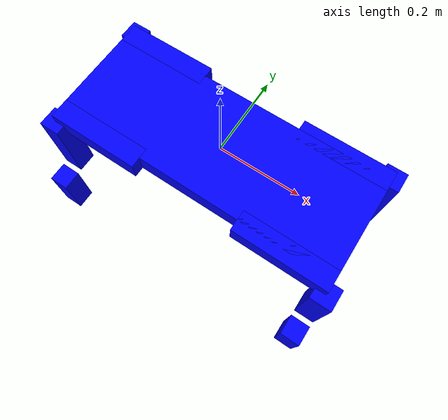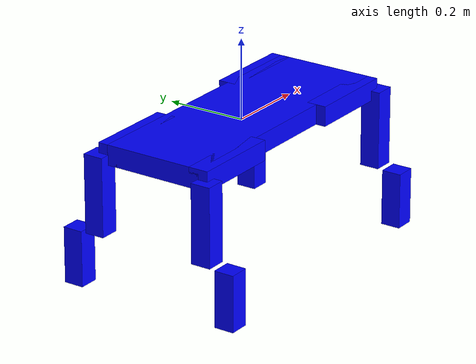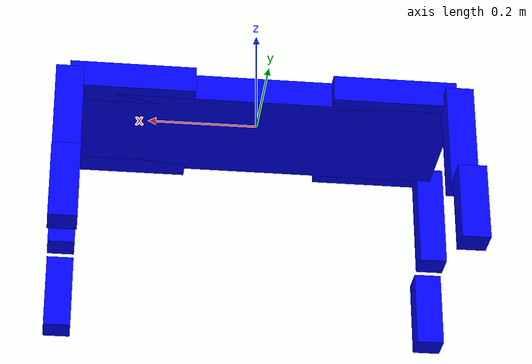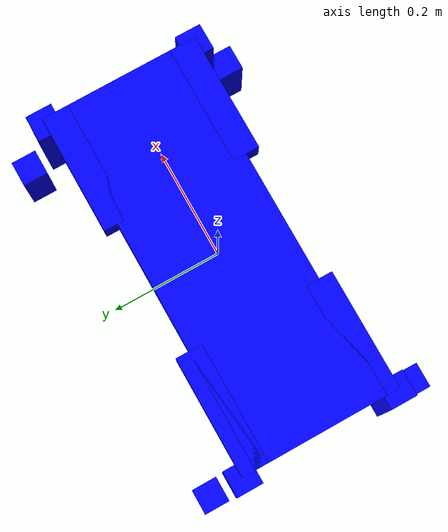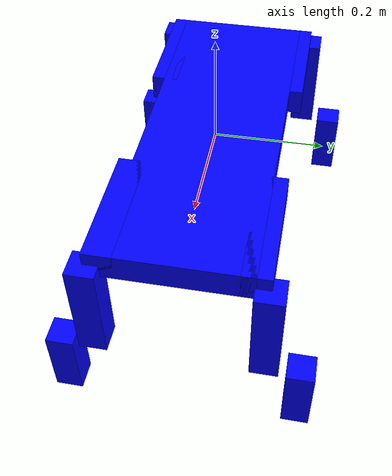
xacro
<?xml version="1.0"?>
<robot name="basic_quad" xmlns:xacro="http://www.ros.org/wiki/xacro">

<!-- Variable Definitions -->
<!-- TODO DR: Fix for new lengths! -->
<xacro:property name="thigh_length" value="0.22550"/>
<xacro:property name="thigh_offset" value="0.02300"/>

<xacro:property name="calf_length"  value="0.19625"/>
<xacro:property name="calf_offset"  value="0.06300"/>

<xacro:property name="foot_length"  value="0.14000"/>
<xacro:property name="foot_offset"  value="0.01600"/>

<xacro:property name="leg_fb"  value="0.35"/>
<xacro:property name="leg_lr"  value="0.125725"/>

<!-- Helper Macros -->
<xacro:macro name="box_link" params="name visual_origin visual_size">
    <link name="${name}">
        <visual>
            <origin xyz="${visual_origin}" rpy="0 0 0"/>
            <geometry>
                <box size="${visual_size}"/>
            </geometry>
            <material name="blue">
                <color rgba="0 0 1 1"/>
            </material>
        </visual>

        <collision>
            <origin xyz="${visual_origin}" rpy="0 0 0"/>
            <geometry>
                <box size="${visual_size}"/>
            </geometry>
        </collision>
    </link>
</xacro:macro>

<xacro:macro name="revolute_joint" params="name parent child origin axis">
    <joint name="${name}" type="revolute">
        <parent link="${parent}"/>
        <child  link="${child}"/>

        <origin xyz="${origin}" rpy="0 0 0"/>

        <axis xyz="${axis}"/>

        <limit lower="-3.14" upper="3.14" effort="1" velocity="1"/>

    </joint>
</xacro:macro>

<xacro:macro name="leg3dof" params="prefix parent hip_origin ysign xsign hip_roll_sign">

    <xacro:box_link
        name="${prefix}_thigh"
        visual_origin="${xsign * thigh_length/2} 0.0 0.0"
        visual_size="${thigh_length} 0.05 0.05"/>

    <xacro:box_link
        name="${prefix}_calf"
        visual_origin="0.0 0.0 ${-calf_length/2}"
        visual_size="0.05 0.05 ${calf_length}"/>

    <xacro:box_link
        name="${prefix}_foot"
        visual_origin="0.0 0.0 ${-foot_length/2}"
        visual_size="0.05 0.05 ${foot_length}"/>

    <xacro:revolute_joint
        name="${prefix}_hip_roll"
        parent="${parent}"
        child="${prefix}_thigh"
        origin="${hip_origin}"
        axis="${hip_roll_sign * 1} 0 0"/>

    <xacro:revolute_joint
        name="${prefix}_hip_pitch"
        parent="${prefix}_thigh"
        child="${prefix}_calf"
        origin="${xsign * thigh_length} ${ysign * thigh_offset} 0.0"
        axis="0 ${ysign * 1} 0"/>

    <xacro:revolute_joint
        name="${prefix}_knee_pitch"
        parent="${prefix}_calf"
        child="${prefix}_foot"
        origin="0.0 ${ysign * calf_offset} ${-calf_length}"
        axis="0 ${ysign * 1} 0"/>

</xacro:macro>

<!-- Actual URDF Definitions -->

<!-- Link/Joint Definitions -->
<xacro:box_link
    name="body"
    visual_origin= "0.0 0.0 0.0"
    visual_size="${leg_fb * 2} ${leg_lr * 2} 0.05"/>

<xacro:leg3dof
    prefix="fl"
    parent="body"
    hip_origin="${leg_fb - thigh_length} ${leg_lr} 0.0"
    ysign="1"
    xsign="1"
    hip_roll_sign="1"/>

<xacro:leg3dof
    prefix="fr"
    parent="body"
    hip_origin="${leg_fb - thigh_length} ${-leg_lr} 0.0"
    ysign="-1"
    xsign="1"
    hip_roll_sign="-1"/>

<xacro:leg3dof
    prefix="bl"
    parent="body"
    hip_origin="${-leg_fb + thigh_length} ${leg_lr} 0.0"
    ysign="1"
    xsign="-1"
    hip_roll_sign="1"/>

<xacro:leg3dof
    prefix="br"
    parent="body"
    hip_origin="${-leg_fb + thigh_length} ${-leg_lr} 0.0"
    ysign="-1"
    xsign="-1"
    hip_roll_sign="-1"/>

</robot>
